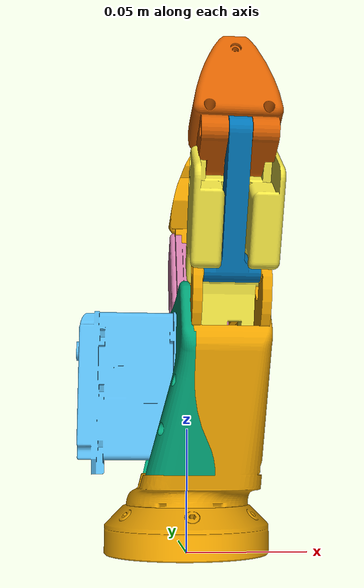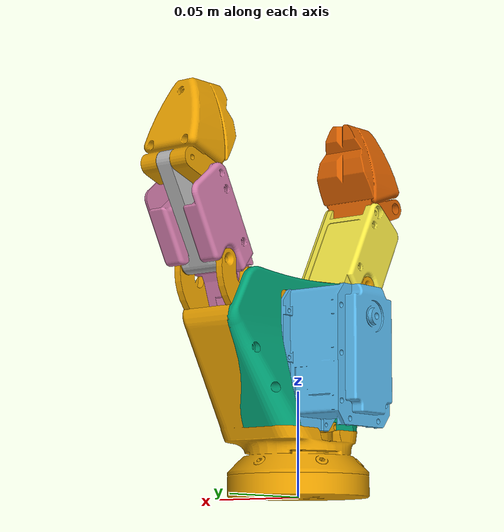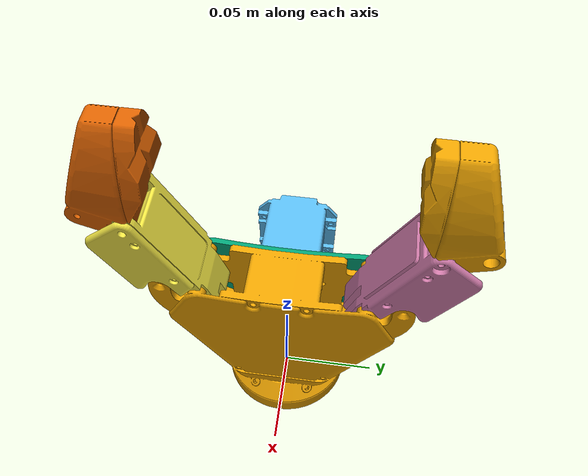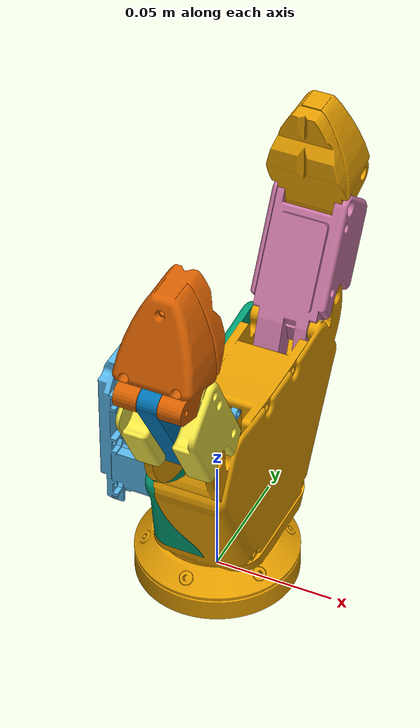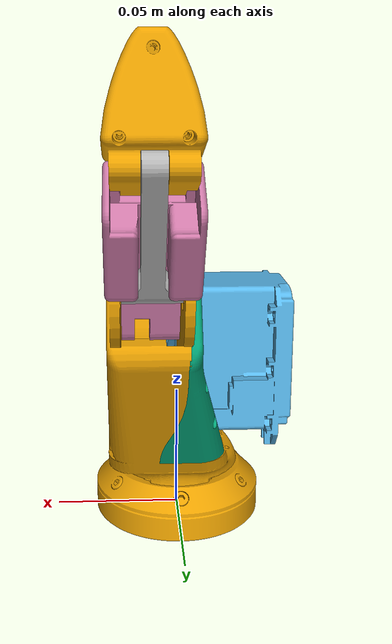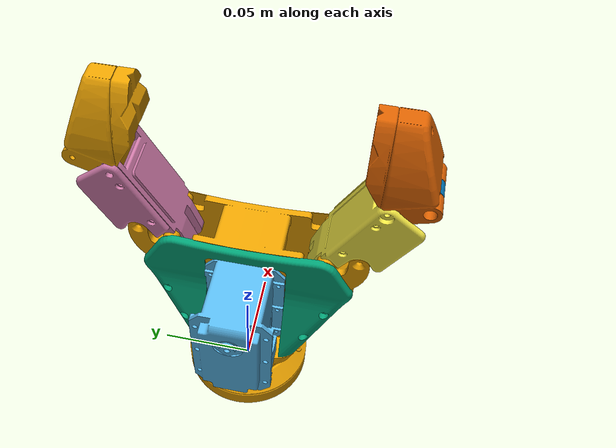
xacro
<?xml version="1.0"?>
<robot xmlns:xacro="http://www.ros.org/wiki/xacro" name="gripper_pincette">

  <xacro:include filename="$(find gripper_pincette)/description/urdf/gripper_pincette_description.urdf.xacro" />

  <!-- Import gripper_pincette ros2_control description -->
  <xacro:include filename="$(find gripper_pincette)/description/ros2_control/gripper_pincette.ros2_control.xacro" />

  <xacro:gripper_pincette/>

  <xacro:gripper_pincette_ros2_control name="gripper_pincette"/>

  <xacro:include filename="$(find gripper_pincette)/description/gazebo/gripper_pincette.gazebo.xacro" />
  <xacro:gripper_pincette_gazebo/>

</robot>

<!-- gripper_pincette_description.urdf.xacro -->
<robot xmlns:xacro="http://www.ros.org/wiki/xacro">

  <xacro:macro name="gripper_pincette">

  <!-- helper macro -->
  <xacro:include filename="$(find gripper_pincette)/description/urdf/inc/create_link.xacro"/>

  <xacro:create_link
      link_name="structure"
      xyz_offset="0 0 0"
      rpy_offset="0 0 0"
      mesh_package="gripper_pincette"
      mesh_name="structure"
      xyz_mass="0 0 0"
      mass="1"
      ixx="1"
      ixy="0"
      ixz="0"
      iyy="1"
      iyz="0"
      izz="1"
  />

  <xacro:create_link
      link_name="motor"
      xyz_offset="0 0 0"
      rpy_offset="0 0 0"
      mesh_package="gripper_pincette"
      mesh_name="motor"
      xyz_mass="0 0 0"
      mass="1"
      ixx="1"
      ixy="0"
      ixz="0"
      iyy="1"
      iyz="0"
      izz="1"
  />

  <xacro:create_link
      link_name="palm_top_shell"
      xyz_offset="0 0 0"
      rpy_offset="0 0 0"
      mesh_package="gripper_pincette"
      mesh_name="palm_top_shell"
      xyz_mass="0 0 0"
      mass="1"
      ixx="1"
      ixy="0"
      ixz="0"
      iyy="1"
      iyz="0"
      izz="1"
  />

  <xacro:create_link
      link_name="right_finger_first_phalanx"
      xyz_offset="0 0 0"
      rpy_offset="0 0 0"
      mesh_package="gripper_pincette"
      mesh_name="right_finger_first_phalanx"
      xyz_mass="0 0 0"
      mass="1"
      ixx="1"
      ixy="0"
      ixz="0"
      iyy="1"
      iyz="0"
      izz="1"
  />

  <xacro:create_link
      link_name="right_external_rod"
      xyz_offset="0 0 0"
      rpy_offset="0 0 0"
      mesh_package="gripper_pincette"
      mesh_name="external_rod"
      xyz_mass="0 0 0"
      mass="1"
      ixx="1"
      ixy="0"
      ixz="0"
      iyy="1"
      iyz="0"
      izz="1"
  />

  <xacro:create_link
      link_name="right_finger_last_phalanx"
      xyz_offset="0 0 0"
      rpy_offset="0 0 0"
      mesh_package="gripper_pincette"
      mesh_name="finger_last_phalanx"
      xyz_mass="0 0 0"
      mass="1"
      ixx="1"
      ixy="0"
      ixz="0"
      iyy="1"
      iyz="0"
      izz="1"
  />

  <xacro:create_link
      link_name="left_finger_first_phalanx"
      xyz_offset="0 0 0"
      rpy_offset="0 0 0"
      mesh_package="gripper_pincette"
      mesh_name="left_finger_first_phalanx"
      xyz_mass="0 0 0"
      mass="1"
      ixx="1"
      ixy="0"
      ixz="0"
      iyy="1"
      iyz="0"
      izz="1"
  />

  <xacro:create_link
      link_name="left_external_rod"
      xyz_offset="0 0 0"
      rpy_offset="0 0 0"
      mesh_package="gripper_pincette"
      mesh_name="external_rod"
      xyz_mass="0 0 0"
      mass="1"
      ixx="1"
      ixy="0"
      ixz="0"
      iyy="1"
      iyz="0"
      izz="1"
  />

  <xacro:create_link
      link_name="left_finger_last_phalanx"
      xyz_offset="0 0 0"
      rpy_offset="0 0 0"
      mesh_package="gripper_pincette"
      mesh_name="finger_last_phalanx"
      xyz_mass="0 0 0"
      mass="1"
      ixx="1"
      ixy="0"
      ixz="0"
      iyy="1"
      iyz="0"
      izz="1"
  />

  <joint name="structure_motor" type="fixed">
    <parent link="structure"/>
    <child link="motor"/>
    <origin xyz="0.009 0 0.0825" rpy="0 -1.57 0"/>
  </joint>

  <joint name="structure_palm" type="fixed">
    <parent link="structure"/>
    <child link="palm_top_shell"/>
    <origin xyz="-0.002 0 0.101" rpy="0 -1.57 0"/>
  </joint>

  <joint name="right_finger_joint" type="revolute">
    <parent link="structure"/>
    <child link="right_finger_first_phalanx"/>
    <origin xyz="0.015 -0.038 0.1015" rpy="0 -1.57 0"/>
    <axis xyz="0 0 1"/>
    <limit effort="1000.0" lower="0.0" upper="1.05" velocity="2.5"/>
  </joint>

  <joint name="right_external_rod_joint" type="revolute">
    <mimic joint="right_finger_joint" multiplier="-1" offset="0"/>
    <parent link="structure"/>
    <child link="right_external_rod"/>
    <origin xyz="0.012 -0.054 0.1069" rpy="3.14 -1.57 0"/>
    <axis xyz="0 0 1"/>
    <limit effort="1000.0" lower="-1.05" upper="0.0" velocity="2.5"/>
  </joint>

  <joint name="right_fingertip_joint" type="revolute">
    <mimic joint="right_finger_joint" multiplier="-1" offset="0"/>
    <parent link="right_external_rod"/>
    <child link="right_finger_last_phalanx"/>
    <origin xyz="0.0433 0.025 0" rpy="3.14 0 0"/>
    <axis xyz="0 0 1"/>
    <limit effort="1000.0" lower="-1.05" upper="0.0" velocity="2.5"/>
  </joint>

  <joint name="left_finger_joint" type="revolute">
    <mimic joint="right_finger_joint" multiplier="-1" offset="0"/>
    <parent link="structure"/>
    <child link="left_finger_first_phalanx"/>
    <origin xyz="0.015 0.038 0.1015" rpy="0 -1.57 0"/>
    <axis xyz="0 0 1"/>
    <limit effort="1000.0" lower="-1.05" upper="0.0" velocity="2.5"/>
  </joint>

  <joint name="left_external_rod_joint" type="revolute">
    <mimic joint="right_finger_joint" multiplier="-1" offset="0"/>
    <parent link="structure"/>
    <child link="left_external_rod"/>
    <origin xyz="0.012 0.054 0.1069" rpy="0 -1.57 0"/>
    <axis xyz="0 0 1"/>
    <limit effort="1000.0" lower="-1.05" upper="0.0" velocity="2.5"/>
  </joint>

  <joint name="left_fingertip_joint" type="revolute">
    <mimic joint="right_finger_joint" multiplier="-1" offset="0"/>
    <parent link="left_external_rod"/>
    <child link="left_finger_last_phalanx"/>
    <origin xyz="0.0433 0.025 0" rpy="3.14 0 0"/>
    <axis xyz="0 0 1"/>
    <limit effort="1000.0" lower="-1.05" upper="0.0" velocity="2.5"/>
  </joint>

</xacro:macro>

</robot>

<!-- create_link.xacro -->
<robot xmlns:xacro="http://wiki.ros.org/xacro">

  <xacro:macro name="create_link" params="
        link_name
        xyz_offset
        rpy_offset
        mesh_package
        mesh_name
        xyz_mass
        mass
        ixx
        ixy
        ixz
        iyy
        iyz
        izz">
    <link name="${link_name}">
      <visual>
        <origin xyz="${xyz_offset}" rpy="${rpy_offset}"/>
        <geometry>
          <mesh filename="file://$(find ${mesh_package})/description/meshes/visual/${mesh_name}.dae" />
        </geometry>
      </visual>
      <collision>
        <origin xyz="${xyz_offset}" rpy="${rpy_offset}"/>
        <geometry>
          <mesh filename="file://$(find ${mesh_package})/description/meshes/collision/${mesh_name}.stl"/>
        </geometry>
      </collision>
      <inertial>
        <origin xyz="${xyz_mass}" rpy="0 0 0"/>
        <mass value="${mass}"/>
        <inertia ixx="${ixx}" ixy="${ixy}" ixz="${ixz}" iyy="${iyy}" iyz="${iyz}" izz="${izz}"/>
      </inertial>
    </link>
  </xacro:macro>
</robot>
